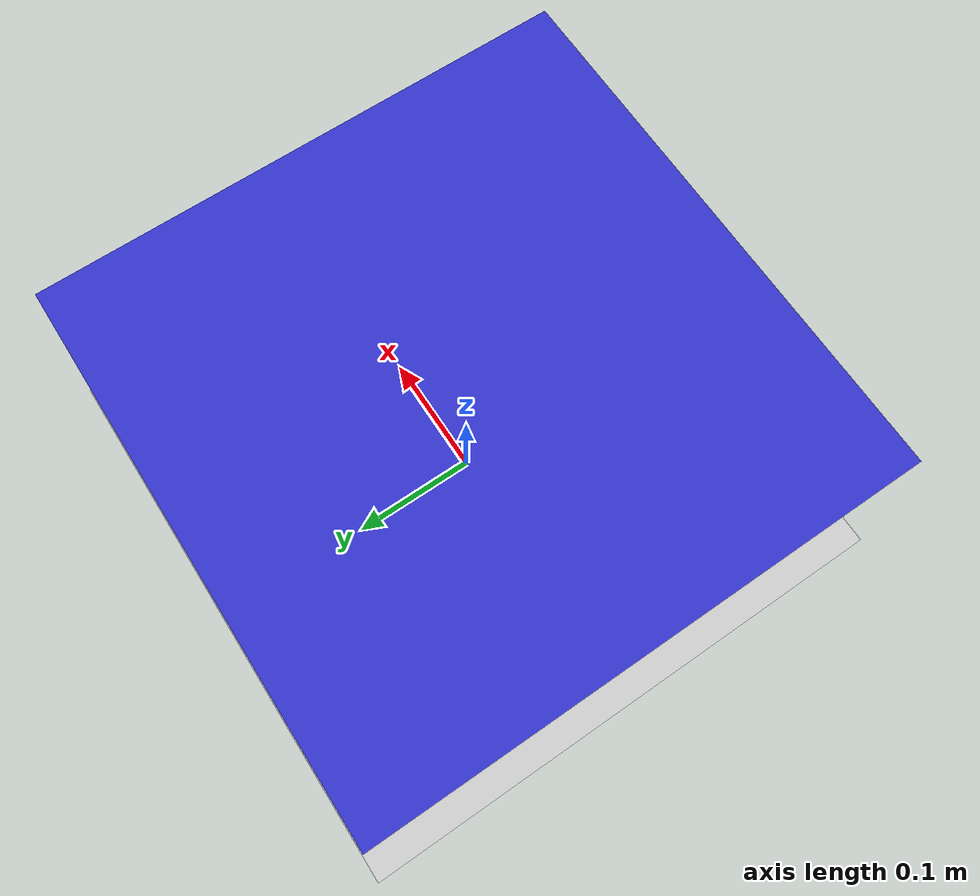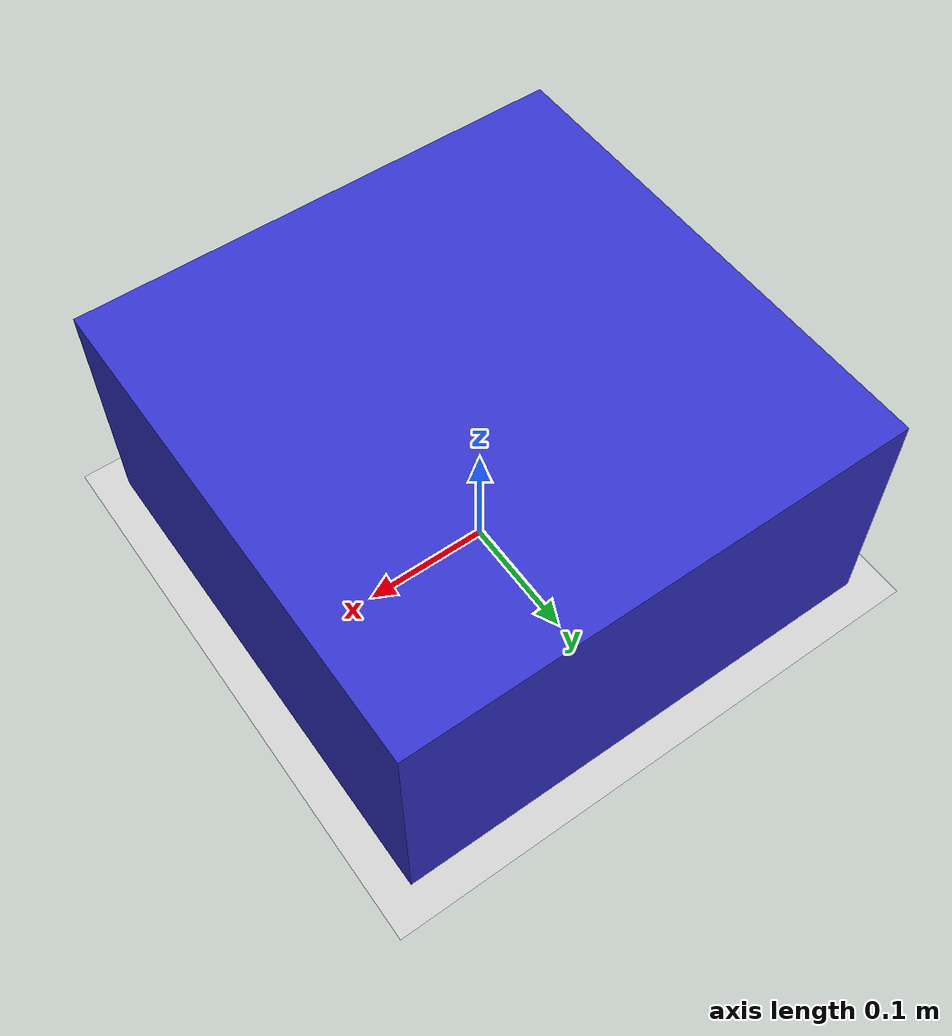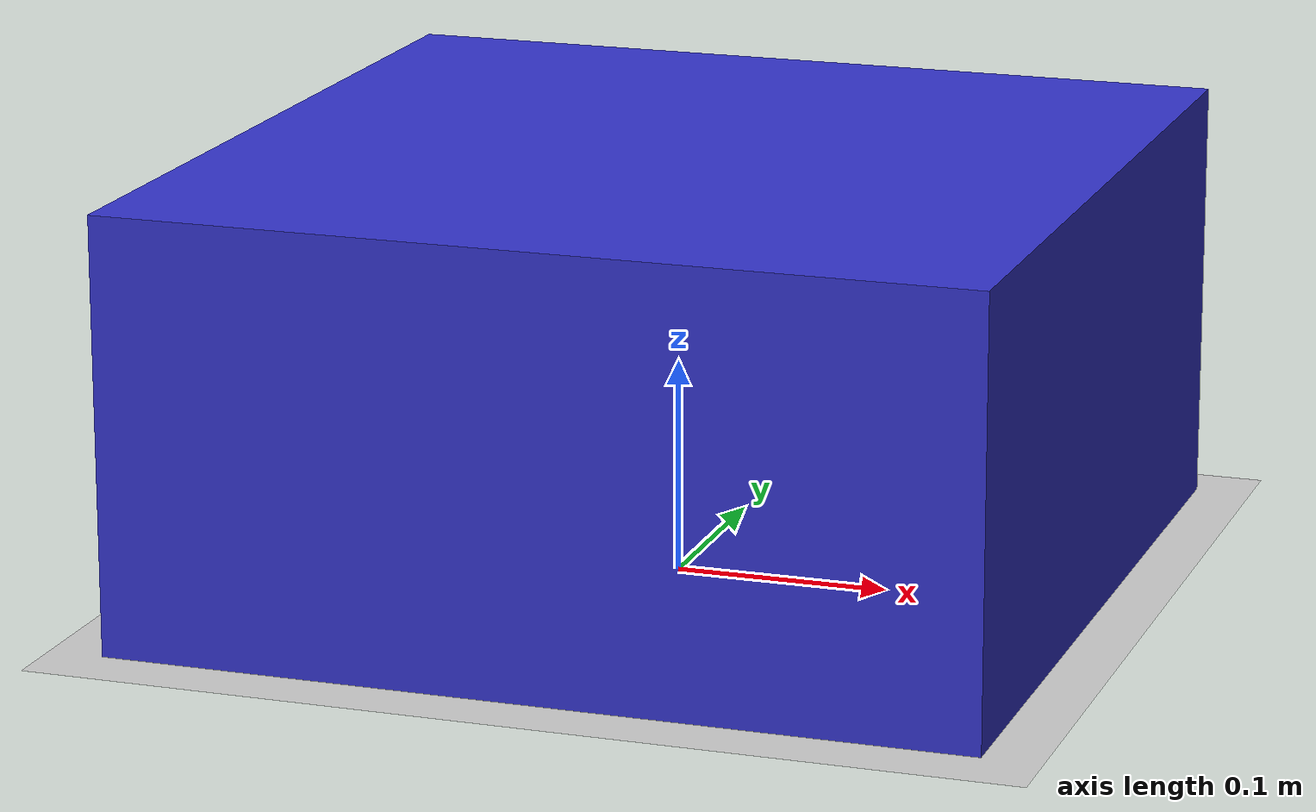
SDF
<?xml version="1.0"?>

<sdf version="1.9">
    <world name="empty">
        <physics name="1ms" type="ignored">
            <max_step_size>0.001</max_step_size>
            <real_time_factor>1.0</real_time_factor>
        </physics>
        <plugin
            filename="gz-sim-physics-system"
            name="gz::sim::systems::Physics">
        </plugin>
        <plugin
            filename="gz-sim-user-commands-system"
            name="gz::sim::systems::UserCommands">
        </plugin>
        <plugin
            filename="gz-sim-scene-broadcaster-system"
            name="gz::sim::systems::SceneBroadcaster">
        </plugin>
        <plugin
            filename="gz-sim-contact-system"
            name="gz::sim::systems::Contact">
        </plugin>

        <plugin
            filename="gz-sim-sensors-system"
            name="gz::sim::systems::Sensors">
            <render_engine>ogre2</render_engine>
        </plugin>
        <plugin
            filename="gz-sim-imu-system"
            name="gz::sim::systems::Imu">
        </plugin>
        <plugin
            filename="gz-sim-navsat-system"
            name="gz::sim::systems::NavSat">
        </plugin>
        <!-- Set the coordinates for the world origin -->
        <spherical_coordinates>
            <surface_model>EARTH_WGS84</surface_model>
            <world_frame_orientation>ENU</world_frame_orientation>
            <latitude_deg>47.478950</latitude_deg>
            <longitude_deg>19.057785</longitude_deg>
            <elevation>0</elevation>
            <heading_deg>0</heading_deg>
        </spherical_coordinates>

        <light type="directional" name="sun">
            <cast_shadows>true</cast_shadows>
            <pose>0 0 10 0 0 0</pose>
            <diffuse>0.8 0.8 0.8 1</diffuse>
            <specular>0.2 0.2 0.2 1</specular>
            <attenuation>
                <range>1000</range>
                <constant>0.9</constant>
                <linear>0.01</linear>
                <quadratic>0.001</quadratic>
            </attenuation>
            <direction>-0.5 0.1 -0.9</direction>
        </light>

        <gravity>0 0 -9.8000000000000007</gravity>
        <magnetic_field>5.5644999999999998e-06 2.2875799999999999e-05 -4.2388400000000002e-05</magnetic_field>
        <atmosphere type='adiabatic' />
        <scene>
            <ambient>0.400000006 0.400000006 0.400000006 1</ambient>
            <background>0.699999988 0.699999988 0.699999988 1</background>
            <shadows>true</shadows>
        </scene>

        <model name="ground_plane">
            <static>true</static>
            <link name="link">
                <collision name="collision">
                    <geometry>
                        <plane>
                            <normal>0 0 1</normal>
                            <size>100 100</size>
                        </plane>
                    </geometry>
                    <surface>
                        <friction>
                            <ode>
                                <mu>50</mu>
                            </ode>
                        </friction>
                        <bounce />
                        <contact />
                    </surface>
                </collision>
                <visual name="visual">
                    <geometry>
                        <plane>
                            <normal>0 0 1</normal>
                            <size>100 100</size>
                        </plane>
                    </geometry>
                    <material>
                        <ambient>0.8 0.8 0.8 1</ambient>
                        <diffuse>0.8 0.8 0.8 1</diffuse>
                        <specular>0.8 0.8 0.8 1</specular>
                    </material>
                </visual>
            </link>
        </model>

        <model name="robot_with_gps">
            <pose>0 0 0.1 0 0 0</pose>
            <static>false</static>

            <link name="base_link">

                <!-- Visual marker -->
                <visual name="visual">
                    <geometry>
                        <box>
                            <size>0.4 0.4 0.2</size>
                        </box>
                    </geometry>
                    <material>
                        <ambient>0.2 0.2 0.8 1</ambient>
                    </material>
                </visual>

                 <collision name="collision">
                    <geometry>
                        <box>
                            <size>0.4 0.4 0.2</size>
                        </box>
                    </geometry>
                 </collision>

                <!-- Inertial so physics works -->
                <inertial>
                    <mass>1.0</mass>
                    <inertia>
                        <ixx>0.01</ixx>
                        <iyy>0.01</iyy>
                        <izz>0.01</izz>
                    </inertia>
                </inertial>

                <!-- GPS / NavSat sensor -->
                <sensor name="gps" type="navsat">
                    <pose>0 0 0.2 0 0 0</pose>
                    <always_on>1</always_on>
                    <update_rate>5</update_rate>
                    <gps>
                        <position_sensing>

                        </position_sensing>
                    </gps>
                </sensor>

            </link>
        </model>

    </world>
</sdf>
